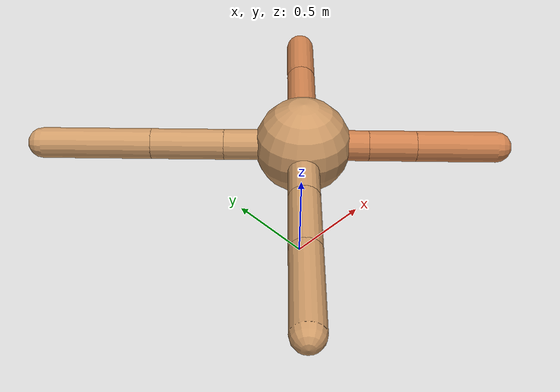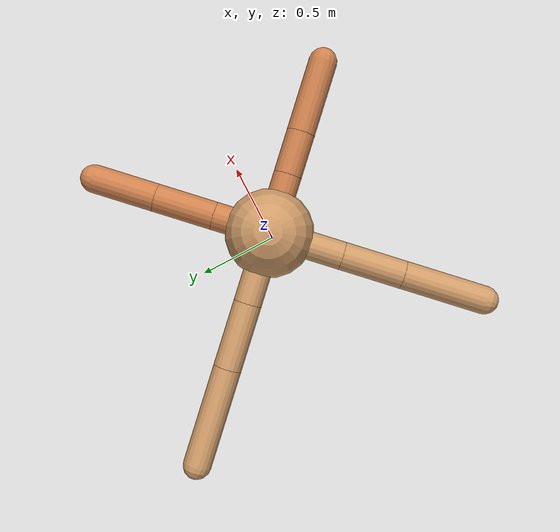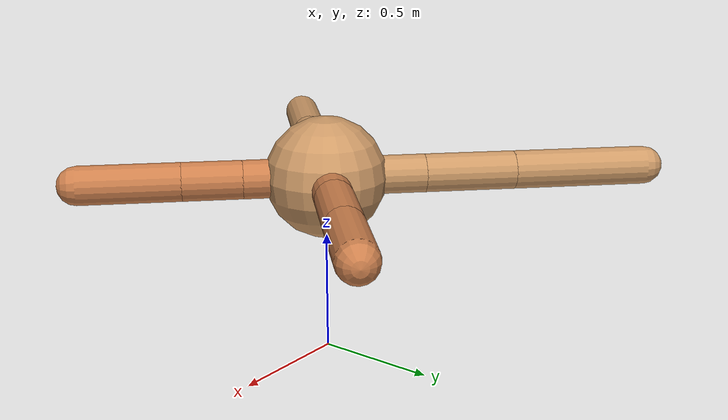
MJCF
<mujoco model="ant">
  <compiler angle="degree" coordinate="local" inertiafromgeom="true" />
  <option integrator="RK4" timestep="0.01" />
  <custom>
    <numeric data="0.0 0.0 0.55 1.0 0.0 0.0 0.0 0.0 1.0 0.0 -1.0 0.0 -1.0 0.0 1.0" name="init_qpos" />
  </custom>
  <default>
    <joint armature="1" damping="1" limited="true" />
    <geom conaffinity="0" condim="3" density="5.0" friction="1.5 0.1 0.1" margin="0.01" rgba="0.8 0.6 0.4 1" />
  </default>
  <worldbody>
    <body name="torso" pos="0 0 0.75">
      <geom name="torso_geom" pos="0 0 0" size="0.25" type="sphere" />

      <body name="front_left_leg" pos="0 0 0">
        <geom fromto="0.0 0.0 0.0 0.22723349220037328 0.22723349220037328 0.0" name="aux_1_geom" size="0.08" type="capsule" rgba=".8 .5 .3 1" />
        <body name="aux_1" pos="0.22723349220037328 0.22723349220037328 0.0">
          <joint axis="0 0 1" name="hip_1" pos="0.0 0.0 0.0" range="-40 40" type="hinge" />
          <geom fromto="0.0 0.0 0.0 0.23951309887633407 0.23951309887633407 0.0" name="left_leg_geom" size="0.08" type="capsule" rgba=".8 .5 .3 1" />
          <body pos="0.23951309887633407 0.23951309887633407 0.0" name="front_left_foot">
            <joint axis="-1 1 0" name="ankle_1" pos="0.0 0.0 0.0" range="30 100" type="hinge" />
            <geom fromto="0.0 0.0 0.0 0.2524394580418547 0.2524394580418547 0.0" name="left_ankle_geom" size="0.08" type="capsule" rgba=".8 .5 .3 1" />
          </body>
        </body>
      </body>
      <body name="front_right_leg" pos="0 0 0">
        <geom fromto="0.0 0.0 0.0 -0.2889777845312005 0.2889777845312005 0.0" name="aux_2_geom" size="0.08" type="capsule" />
        <body name="aux_2" pos="-0.2889777845312005 0.2889777845312005 0.0">
          <joint axis="0 0 1" name="hip_2" pos="0.0 0.0 0.0" range="-40 40" type="hinge" />
          <geom fromto="0.0 0.0 0.0 -0.26657346852820857 0.26657346852820857 0.0" name="right_leg_geom" size="0.08" type="capsule" />
          <body pos="-0.26657346852820857 0.26657346852820857 0.0" name="front_right_foot">
            <joint axis="1 1 0" name="ankle_2" pos="0.0 0.0 0.0" range="-100 -30" type="hinge" />
            <geom fromto="0.0 0.0 0.0 -0.39902537441355723 0.39902537441355723 0.0" name="right_ankle_geom" size="0.08" type="capsule" />
          </body>
        </body>
      </body>
      <body name="left_back_leg" pos="0 0 0">
        <geom fromto="0.0 0.0 0.0 -0.29995390599999566 -0.29995390599999566 0.0" name="aux_3_geom" size="0.08" type="capsule" />
        <body name="aux_3" pos="-0.29995390599999566 -0.29995390599999566 0.0">
          <joint axis="0 0 1" name="hip_3" pos="0.0 0.0 0.0" range="-40 40" type="hinge" />
          <geom fromto="0.0 0.0 0.0 -0.25005027040415373 -0.25005027040415373 0.0" name="back_leg_geom" size="0.08" type="capsule" />
          <body pos="-0.25005027040415373 -0.25005027040415373 0.0" name="left_back_foot">
            <joint axis="-1 1 0" name="ankle_3" pos="0.0 0.0 0.0" range="-100 -30" type="hinge" />
            <geom fromto="0.0 0.0 0.0 -0.3336023658105738 -0.3336023658105738 0.0" name="third_ankle_geom" size="0.08" type="capsule" />
          </body>
        </body>
      </body>
      <body name="right_back_leg" pos="0 0 0">
        <geom fromto="0.0 0.0 0.0 0.23963718001092316 -0.23963718001092316 0.0" name="aux_4_geom" size="0.08" type="capsule" rgba=".8 .5 .3 1" />
        <body name="aux_4" pos="0.23963718001092316 -0.23963718001092316 0.0">
          <joint axis="0 0 1" name="hip_4" pos="0.0 0.0 0.0" range="-40 40" type="hinge" />
          <geom fromto="0.0 0.0 0.0 0.17316941940530028 -0.17316941940530028 0.0" name="rightback_leg_geom" size="0.08" type="capsule" rgba=".8 .5 .3 1" />
          <body pos="0.17316941940530028 -0.17316941940530028 0.0" name="right_back_foot">
            <joint axis="1 1 0" name="ankle_4" pos="0.0 0.0 0.0" range="30 100" type="hinge" />
            <geom fromto="0.0 0.0 0.0 0.2926459768478926 -0.2926459768478926 0.0" name="fourth_ankle_geom" size="0.08" type="capsule" rgba=".8 .5 .3 1" />
          </body>
        </body>
      </body>
    </body>
  </worldbody>
  <actuator>
    <motor ctrllimited="true" ctrlrange="-1.0 1.0" joint="hip_4" gear="150" />
    <motor ctrllimited="true" ctrlrange="-1.0 1.0" joint="ankle_4" gear="150" />
    <motor ctrllimited="true" ctrlrange="-1.0 1.0" joint="hip_1" gear="150" />
    <motor ctrllimited="true" ctrlrange="-1.0 1.0" joint="ankle_1" gear="150" />
    <motor ctrllimited="true" ctrlrange="-1.0 1.0" joint="hip_2" gear="150" />
    <motor ctrllimited="true" ctrlrange="-1.0 1.0" joint="ankle_2" gear="150" />
    <motor ctrllimited="true" ctrlrange="-1.0 1.0" joint="hip_3" gear="150" />
    <motor ctrllimited="true" ctrlrange="-1.0 1.0" joint="ankle_3" gear="150" />
  </actuator>
</mujoco>
